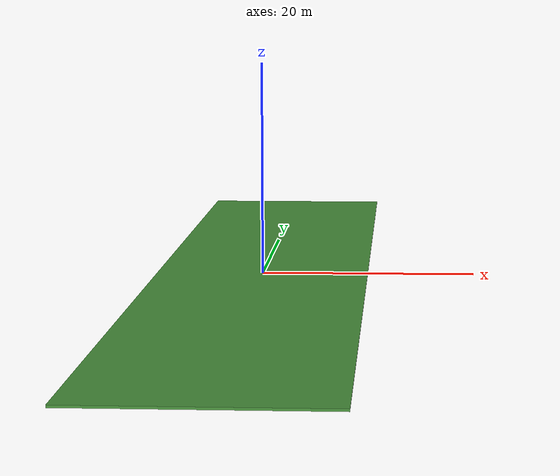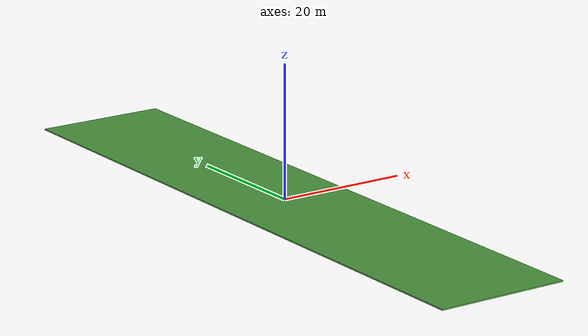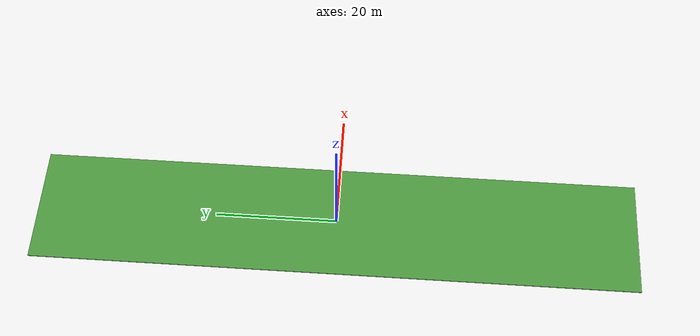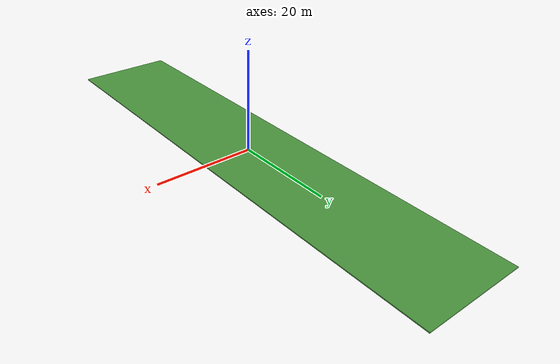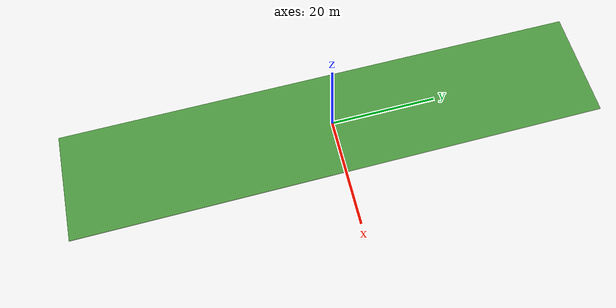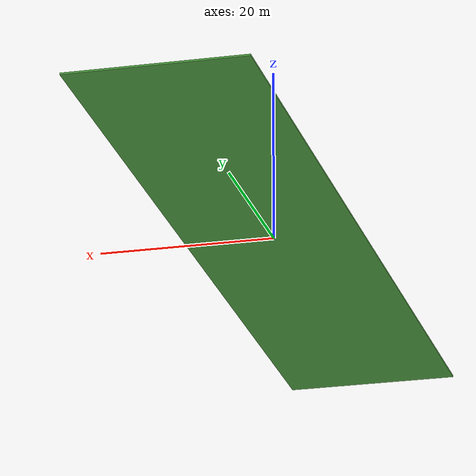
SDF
<?xml version="1.0" ?>
<sdf version="1.6">
  <model name="grass_plane">
    <static>true</static>
    <link name="link">
      <visual name="visual">
        <geometry>
          <box>
            <size>20 100 .2</size>
          </box>
        </geometry>
        <material>
          <script>
            <uri>file://media/materials/scripts/gazebo.material</uri>
            <name>Gazebo/Grass</name>
          </script>
        </material>
      </visual>
      <collision name="collision">
        <geometry>
          <box>
            <size>20 100 .2</size>
          </box>
        </geometry>
      </collision>
    </link>
  </model>
</sdf>
